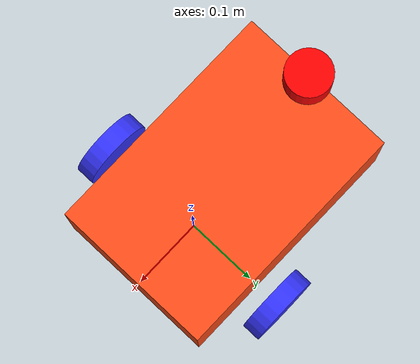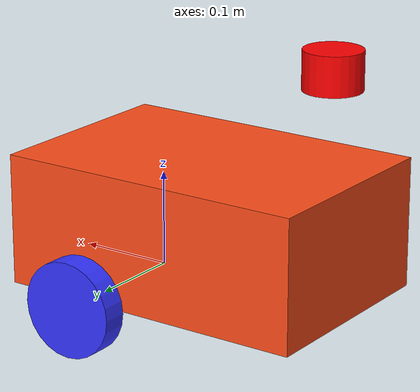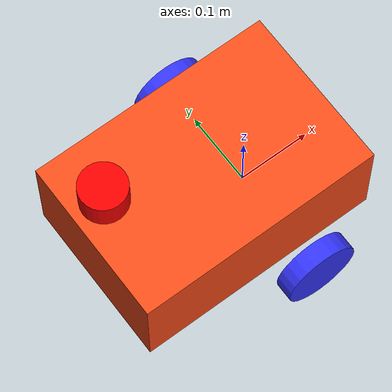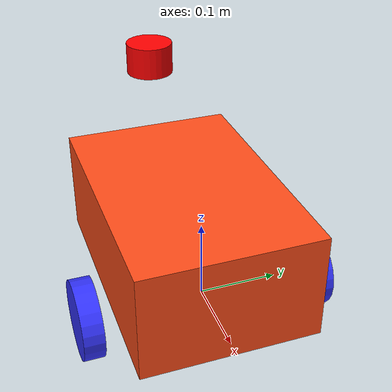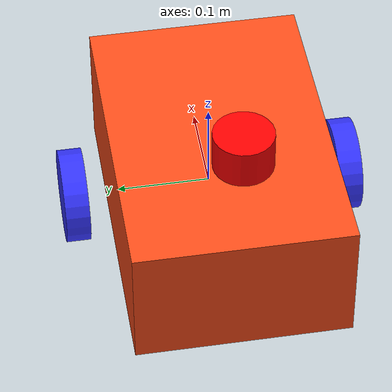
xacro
<?xml version="1.0"?>
<!-- Basic differential drive mobile base -->
<robot xmlns:xacro="http://www.ros.org/wiki/xacro" name="diffdrive_robot">
  <xacro:arg name="prefix" default="" />

  <xacro:include filename="$(find ros2_ddsm115)/urdf/inertial_macros.xacro" />

  <xacro:include filename="$(find ros2_ddsm115)/urdf/robot_demo.urdf.xacro" />
  <xacro:include filename="$(find ros2_ddsm115)/urdf/lidar.xacro" />

  <!-- Import Rviz colors -->

  <!-- Import diffbot ros2_control description -->
  <xacro:include filename="$(find ros2_ddsm115)/ros2_control/diffbot.ros2_control.xacro" />

  <xacro:diffbot prefix="$(arg prefix)" />

</robot>

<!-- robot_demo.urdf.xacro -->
<robot xmlns:xacro="http://www.ros.org/wiki/xacro" >

    <xacro:macro name="diffbot" params="prefix">

    <xacro:property name="chassis_length" value="0.335"/>
    <xacro:property name="chassis_width" value="0.225"/>
    <xacro:property name="chassis_height" value="0.138"/>
    <xacro:property name="chassis_mass" value="1.0"/>
    <xacro:property name="wheel_radius" value="0.05"/>
    <xacro:property name="wheel_thickness" value="0.026"/>
    <xacro:property name="wheel_mass" value="0.05"/>
    <xacro:property name="wheel_offset_x" value="0.226"/>
    <xacro:property name="wheel_offset_y" value="0.1485"/>
    <xacro:property name="wheel_offset_z" value="0.01"/>
    <xacro:property name="caster_wheel_radius" value="0.01"/>
    <xacro:property name="caster_wheel_mass" value="0.01"/>
    <xacro:property name="caster_wheel_offset_x" value="0.075"/>
    <xacro:property name="caster_wheel_offset_z" value="${wheel_offset_z - wheel_radius + caster_wheel_radius}"/>

    <material name="white">
        <color rgba="1 1 1 1" />
    </material>

    <material name="orange">
        <color rgba="1 0.3 0.1 1"/>
    </material>

    <material name="blue">
        <color rgba="0.2 0.2 1 1"/>
    </material>

    <material name="black">
        <color rgba="0 0 0 1"/>
    </material>

    <material name="red">
        <color rgba="1 0 0 1"/>
    </material>

    <!-- BASE LINK -->

    <link name="base_link">

    </link>

    <!-- BASE_FOOTPRINT LINK -->

    <joint name="base_footprint_joint" type="fixed">
        <parent link="base_link"/>
        <child link="base_footprint"/>
        <origin xyz="0 0 0" rpy="0 0 0"/>
    </joint>

    <link name="base_footprint">
    </link>

    <!-- CHASSIS LINK -->

    <joint name="chassis_joint" type="fixed">
        <parent link="base_link"/>
        <child link="chassis"/>
        <origin xyz="${-wheel_offset_x} 0 ${-wheel_offset_z}"/>
    </joint>

    <link name="chassis">
        <visual>
            <origin xyz="${chassis_length/2} 0 ${chassis_height/2}"/>
            <geometry>
                <box size="${chassis_length} ${chassis_width} ${chassis_height}"/>
            </geometry>
            <material name="orange"/>
        </visual>
        <collision>
            <origin xyz="${chassis_length/2} 0 ${chassis_height/2}"/>
            <geometry>
                <box size="${chassis_length} ${chassis_width} ${chassis_height}"/>
            </geometry>
        </collision>
        <xacro:inertial_box mass="0.5" x="${chassis_length}" y="${chassis_width}" z="${chassis_height}">
            <origin xyz="${chassis_length/2} 0 ${chassis_height/2}" rpy="0 0 0"/>
        </xacro:inertial_box>
    </link>

    <gazebo reference="chassis">
        <material>Gazebo/Orange</material>
    </gazebo>

    <!-- LEFT WHEEL LINK -->

    <joint name="left_wheel_joint" type="continuous">
        <parent link="base_link"/>
        <child link="left_wheel"/>
        <origin xyz="0 ${wheel_offset_y} 0" rpy="-${pi/2} 0 0" />
        <axis xyz="0 0 1"/>
    </joint>

    <link name="left_wheel">
        <visual>
            <geometry>
                <cylinder radius="${wheel_radius}" length="${wheel_thickness}"/>
            </geometry>
            <material name="blue"/>
        </visual>
        <collision>
            <geometry>
                <sphere radius="${wheel_radius}"/>
            </geometry>
        </collision>
        <xacro:inertial_cylinder mass="${wheel_mass}" length="${wheel_thickness}" radius="${wheel_radius}">
            <origin xyz="0 0 0" rpy="0 0 0"/>
        </xacro:inertial_cylinder>
    </link>

    <gazebo reference="left_wheel">
        <material>Gazebo/Blue</material>
    </gazebo>

    <!-- RIGHT WHEEL LINK -->

    <joint name="right_wheel_joint" type="continuous">
        <parent link="base_link"/>
        <child link="right_wheel"/>
        <origin xyz="0 ${-wheel_offset_y} 0" rpy="${pi/2} 0 0" />
        <axis xyz="0 0 -1"/>
    </joint>

    <link name="right_wheel">
        <visual>
            <geometry>
                <cylinder radius="${wheel_radius}" length="${wheel_thickness}"/>
            </geometry>
            <material name="blue"/>
        </visual>
        <collision>
            <geometry>
                <sphere radius="${wheel_radius}"/>
            </geometry>
        </collision>
        <xacro:inertial_cylinder mass="${wheel_mass}" length="${wheel_thickness}" radius="${wheel_radius}">
            <origin xyz="0 0 0" rpy="0 0 0"/>
        </xacro:inertial_cylinder>
    </link>

    <gazebo reference="right_wheel">
        <material>Gazebo/Blue</material>
    </gazebo>

    <!-- CASTER WHEEL LINK -->

    <joint name="caster_wheel_joint" type="fixed">
        <parent link="chassis"/>
        <child link="caster_wheel"/>
        <origin xyz="${caster_wheel_offset_x} 0 ${caster_wheel_offset_z}"/>
    </joint>

    <link name="caster_wheel">
        <visual>
            <geometry>
                <sphere radius="${caster_wheel_radius}"/>
            </geometry>
            <material name="white"/>
        </visual>
        <collision>
            <geometry>
                <sphere radius="${caster_wheel_radius}"/>
            </geometry>
        </collision>
        <xacro:inertial_sphere mass="${caster_wheel_mass}" radius="${caster_wheel_radius}">
            <origin xyz="0 0 0" rpy="0 0 0"/>
        </xacro:inertial_sphere>
    </link>

    <gazebo reference="caster_wheel">
        <material>Gazebo/White</material>
        <mu1 value="0.001"/>
        <mu2 value="0.001"/>
    </gazebo>

    </xacro:macro>

</robot>

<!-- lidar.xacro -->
<robot xmlns:xacro="http://www.ros.org/wiki/xacro" >

    <xacro:property name="PI" value="3.1415926535897931"/>
    <xacro:property name="chassis_width" value="0.22" />
    <xacro:property name="chassis_length" value="0.28" />
    <xacro:property name="chassis_height" value="0.22" />

    <joint name="laser_joint" type="fixed">
        <parent link="chassis"/>
        <child link="laser_frame"/>
        <origin xyz="0.025 0 ${chassis_height + 0.03}" rpy="0 0 -${PI/2}"/>
    </joint>

    <link name="laser_frame">
        <visual>
            <geometry>
                <cylinder radius="0.03" length="0.04"/>
            </geometry>
            <material name="red"/>
        </visual>
        <collision>
            <geometry>
                <cylinder radius="0.03" length="0.04"/>
            </geometry>
        </collision>
        <xacro:inertial_cylinder mass="0.1" length="0.04" radius="0.03">
            <origin xyz="0 0 0" rpy="0 0 0"/>
        </xacro:inertial_cylinder>
    </link>

    <gazebo reference="laser_frame">
        <material>Gazebo/Red</material>

        <sensor name="laser" type="ray">
            <pose> 0 0 0 0 0 0 </pose>
            <visualize>true</visualize>
            <update_rate>10</update_rate>
            <ray>
                <scan>
                    <horizontal>
                        <samples>360</samples>
                        <min_angle>-3.14</min_angle>
                        <max_angle>3.14</max_angle>
                    </horizontal>
                </scan>
                <range>
                    <min>0.3</min>
                    <max>4</max>
                </range>
            </ray>
            <plugin name="laser_controller" filename="libgazebo_ros_ray_sensor.so">
                <ros>
                    <argument>~/out:=scan</argument>
                </ros>
                <output_type>sensor_msgs/LaserScan</output_type>
                <frame_name>laser_frame</frame_name>
            </plugin>
        </sensor>
    </gazebo>

</robot>
